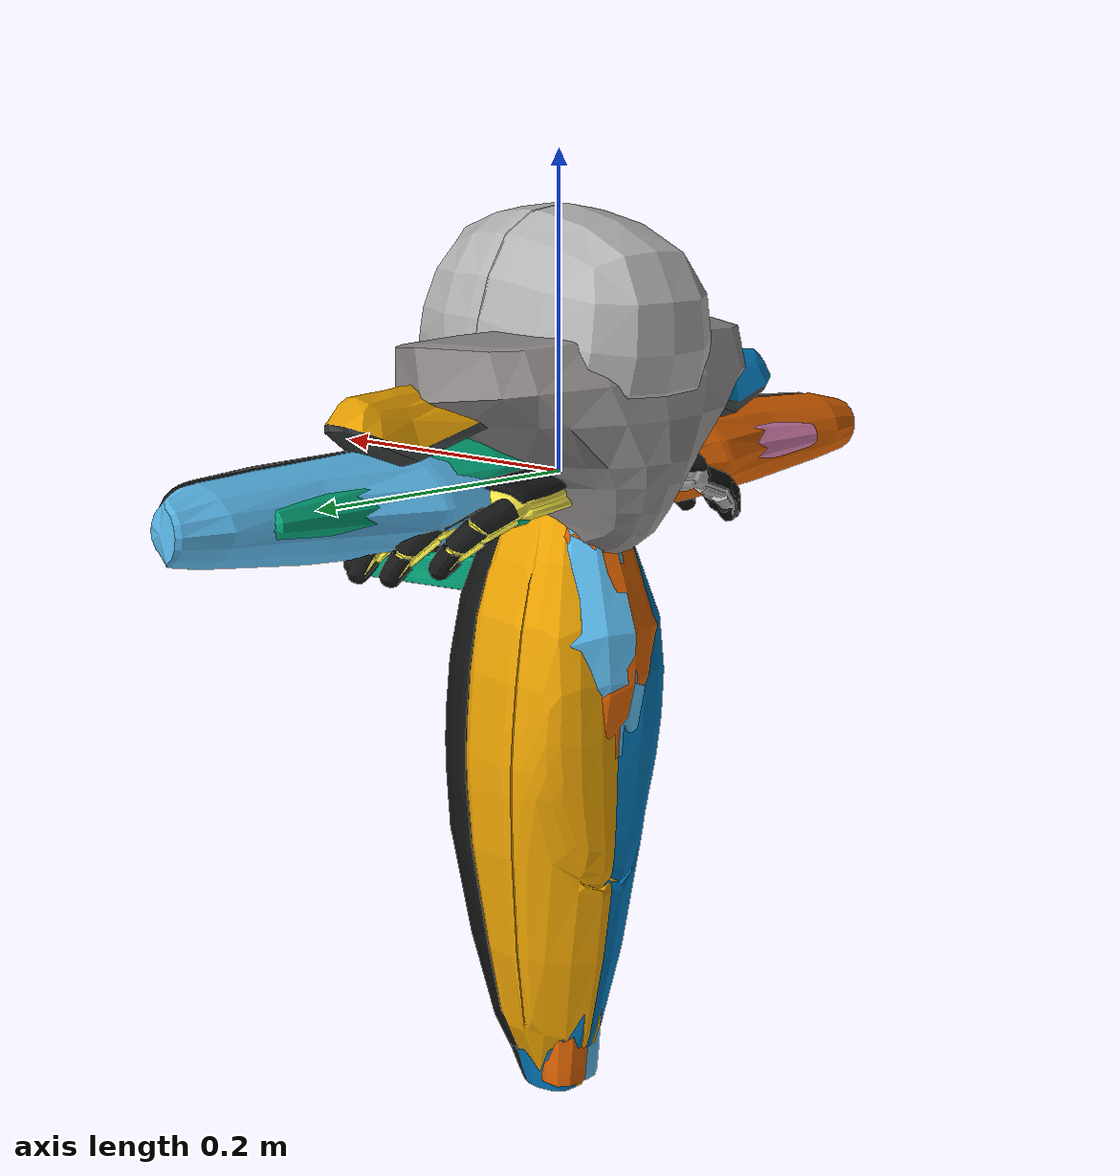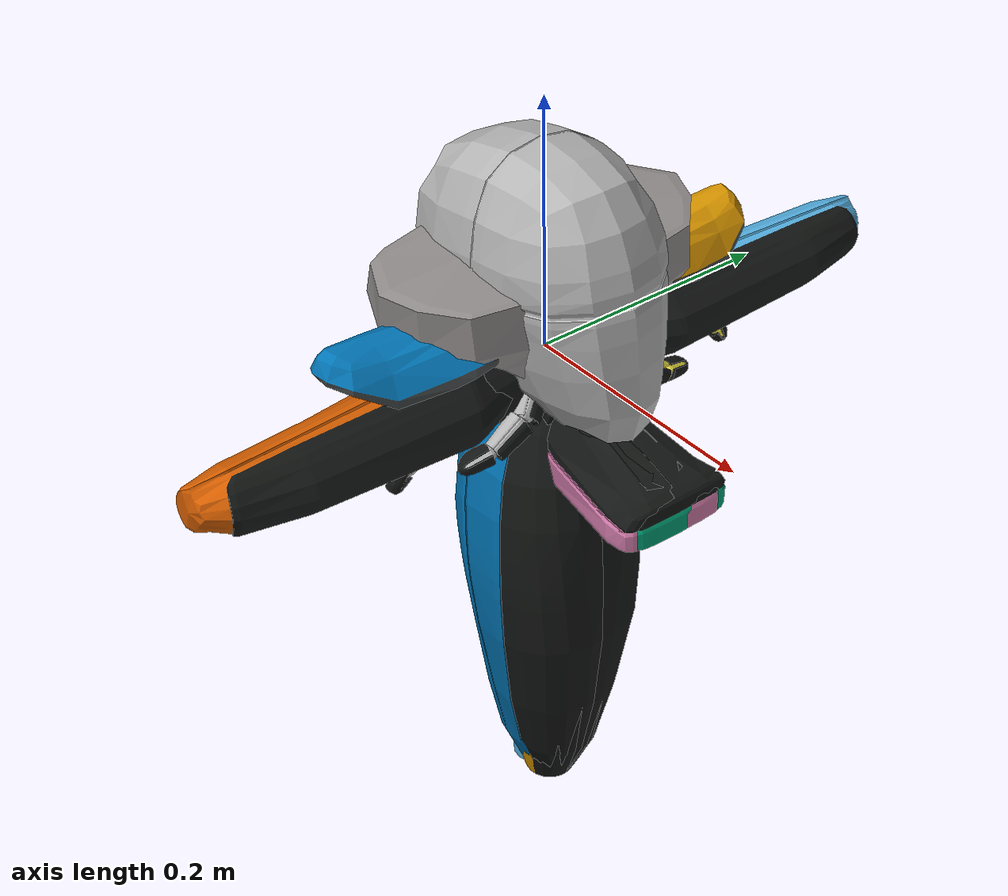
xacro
<?xml version="1.0"?>
<robot xmlns:xacro="http://www.ros.org/wiki/xacro" name="humanoid">

  <xacro:arg name="model_name" default="skeleton"/>
  <xacro:property name="prefix" value="$(arg model_name)"/>

  <!-- World link (reference frame) -->
  <link name="world"/>

  <xacro:macro name="segment" params="name mesh parent">
    <link name="${prefix}_${name}">
      <visual>
        <geometry>
          <mesh filename="package://xsens_mvn_ros2_description/meshes/neutral/xsens_${mesh}.dae" scale="1 1 1"/>
        </geometry>
      </visual>
    </link>
    <joint name="${prefix}_${name}_joint" type="fixed">
      <parent link="${parent}"/>
      <child  link="${prefix}_${name}"/>
      <origin xyz="0 0 0" rpy="0 0 0"/>
    </joint>
  </xacro:macro>

  <!-- Root: pelvis connects directly to world -->
  <xacro:segment name="pelvis"           mesh="Pelvis"        parent="world"/>

  <!-- Spine -->
  <xacro:segment name="l5"              mesh="L5"            parent="${prefix}_pelvis"/>
  <xacro:segment name="l3"              mesh="L3"            parent="${prefix}_l5"/>
  <xacro:segment name="t12"             mesh="T12"           parent="${prefix}_l3"/>
  <xacro:segment name="t8"              mesh="T8"            parent="${prefix}_t12"/>

  <!-- Head / Neck -->
  <xacro:segment name="neck"            mesh="Neck"          parent="${prefix}_t8"/>
  <xacro:segment name="head"            mesh="Head"          parent="${prefix}_neck"/>

  <!-- Left Arm -->
  <xacro:segment name="left_shoulder"   mesh="LeftShoulder"  parent="${prefix}_t8"/>
  <xacro:segment name="left_upper_arm"  mesh="LeftUpperArm"  parent="${prefix}_left_shoulder"/>
  <xacro:segment name="left_forearm"    mesh="LeftForeArm"   parent="${prefix}_left_upper_arm"/>
  <xacro:segment name="left_hand"       mesh="LeftHand"      parent="${prefix}_left_forearm"/>

  <!-- Right Arm -->
  <xacro:segment name="right_shoulder"  mesh="RightShoulder" parent="${prefix}_t8"/>
  <xacro:segment name="right_upper_arm" mesh="RightUpperArm" parent="${prefix}_right_shoulder"/>
  <xacro:segment name="right_forearm"   mesh="RightForeArm"  parent="${prefix}_right_upper_arm"/>
  <xacro:segment name="right_hand"      mesh="RightHand"     parent="${prefix}_right_forearm"/>

  <!-- Left Leg -->
  <xacro:segment name="left_upper_leg"  mesh="LeftUpperLeg"  parent="${prefix}_pelvis"/>
  <xacro:segment name="left_lower_leg"  mesh="LeftLowerLeg"  parent="${prefix}_left_upper_leg"/>
  <xacro:segment name="left_foot"       mesh="LeftFoot"      parent="${prefix}_left_lower_leg"/>
  <xacro:segment name="left_toe"        mesh="LeftToe"       parent="${prefix}_left_foot"/>

  <!-- Right Leg -->
  <xacro:segment name="right_upper_leg" mesh="RightUpperLeg" parent="${prefix}_pelvis"/>
  <xacro:segment name="right_lower_leg" mesh="RightLowerLeg" parent="${prefix}_right_upper_leg"/>
  <xacro:segment name="right_foot"      mesh="RightFoot"     parent="${prefix}_right_lower_leg"/>
  <xacro:segment name="right_toe"       mesh="RightToe"      parent="${prefix}_right_foot"/>

</robot>
